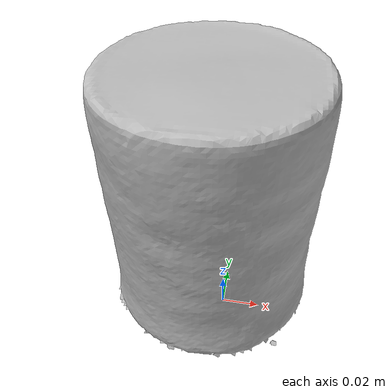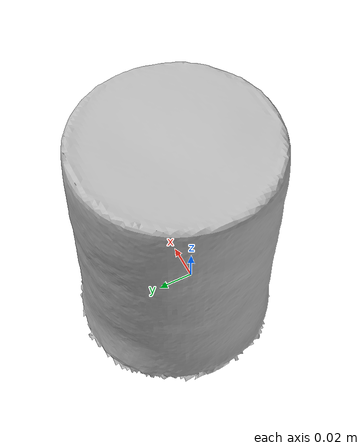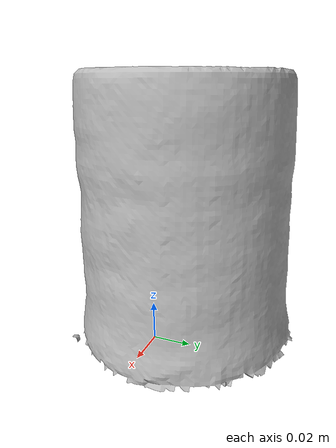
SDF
<?xml version="1.0" ?>
<sdf version="1.4">
  <model name="002_master_chef_can">
    <pose>0 0 0  0 0 0</pose>
    <link name="body">
      <inertial>
        <!-- Volume:  1.0875272220e-03 -->
        <mass> 1.0 </mass>
        <!-- Center of mass: -9.5226800000e-03  1.3478080000e-02  6.9067650000e-02 -->
        <pose> -9.5226800000e-03  1.3478080000e-02  6.9067650000e-02 0 0 0 </pose>
        <!-- Inertia matrix -->
        <inertia>
          <ixx>  2.1405162827e-03 </ixx>
          <ixy>  3.5497326613e-06 </ixy>
          <ixz> -8.6234525539e-06 </ixz>
          <iyy>  2.1387352569e-03 </iyy>
          <iyz>  8.0377212847e-06 </iyz>
          <izz>  1.2756785560e-03 </izz>
        </inertia>
      </inertial>
      <visual name="visual">
        <geometry>
          <mesh>
            <uri>model://002_master_chef_can/nontextured.stl</uri>
          </mesh>
        </geometry>
      </visual>
      <collision name="collision">
        <geometry>
          <mesh>
            <uri>model://002_master_chef_can/nontextured.stl</uri>
          </mesh>
        </geometry>
        <max_contacts>10</max_contacts>
        <surface>
          <friction>
            <ode>
              <mu>0.8</mu>
              <mu2>0.8</mu2>
              <slip1>0</slip1>
              <slip2>0</slip2>
            </ode>
            <torsional>
              <ode/>
            </torsional>
          </friction>
          <contact>
            <ode>
              <kp>1000000.0</kp>
              <kd>1.0</kd>
              <max_vel>0.0</max_vel>
            </ode>
          </contact>
        </surface>
      </collision>
    </link>
  </model>
</sdf>
